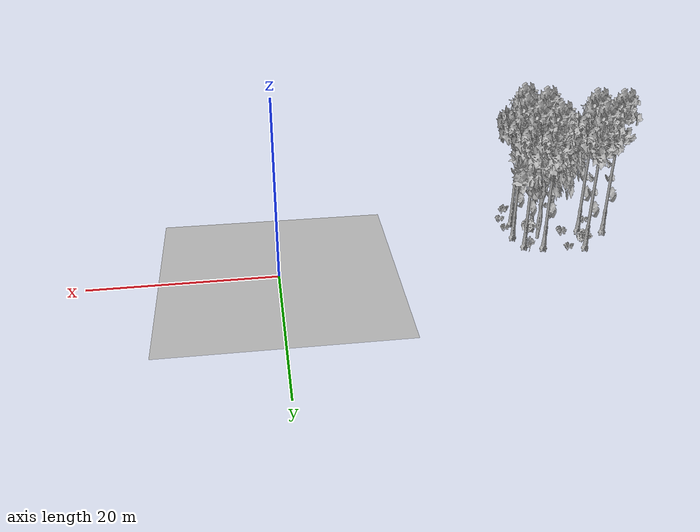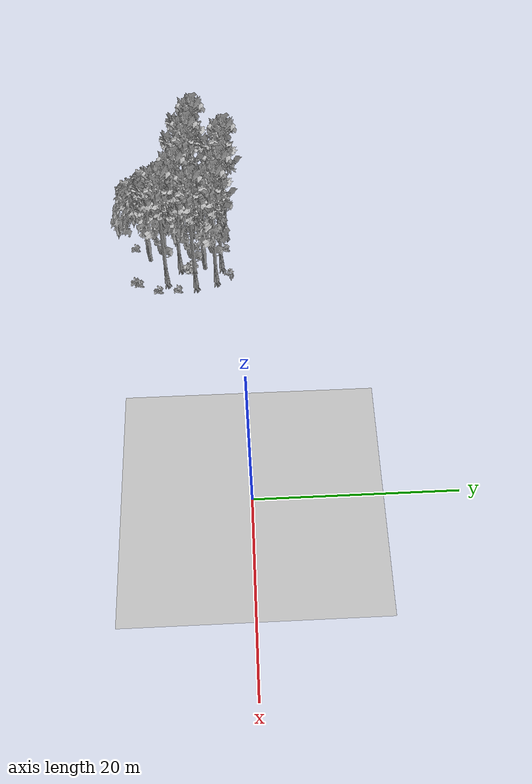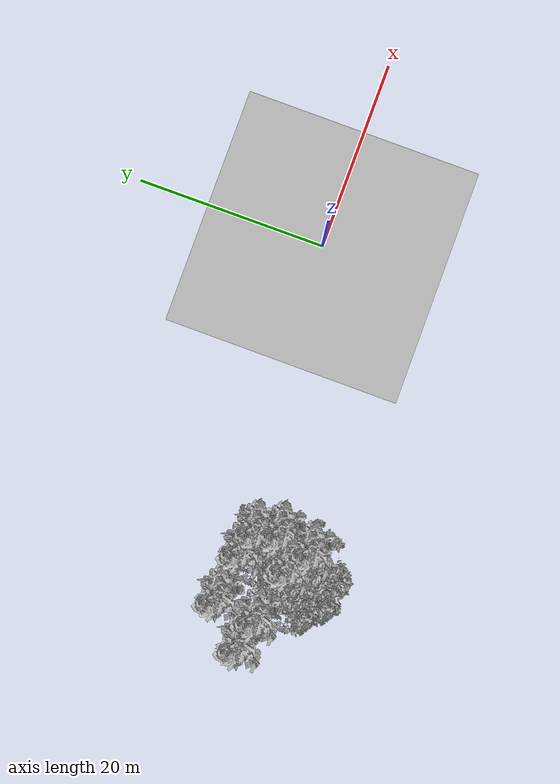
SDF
<sdf version="1.7">
 <world name="default">
  <model name="ground_plane">
   <static>1</static>
   <link name="link">
    <collision name="collision">
     <pose>-50 0 0 0 -0 0</pose>
     <geometry><plane><normal>0 0 1</normal><size>80 80</size></plane></geometry>
     <surface><contact><ode><min_depth>0.01</min_depth><max_vel>0</max_vel></ode></contact></surface>
    </collision>
    <visual name="grass">
     <cast_shadows>0</cast_shadows>
     <geometry>
      <mesh>
       <scale>0.46714285714285714 0.46714285714285714 0.1</scale>
       <uri>file://grass_plane/meshes/grass_plane.dae</uri>
      </mesh>
     </geometry>
    </visual>
   </link>
  </model>
  <model name="Tree 35">
   <static>1</static>
   <pose>-35.33837884634204 -5.912061178661986 0 1.57079 -0 0</pose>
   <link name="link">
    <collision name="collision">
     <geometry><mesh><scale>3.5 5 3.5</scale><uri>model://tree_9/meshes/tree_9.obj</uri></mesh></geometry>
    </collision>
    <visual name="visual">
     <geometry><mesh><scale>3.5 5 3.5</scale><uri>model://tree_9/meshes/tree_9.obj</uri></mesh></geometry>
    </visual>
   </link>
  </model>
  <model name="Tree 46">
   <static>1</static>
   <pose>-30.086069855366304 -7.158116199145198 0 1.57079 -0 0</pose>
   <link name="link">
    <collision name="collision">
     <geometry><mesh><scale>3.5 5 3.5</scale><uri>model://tree_9/meshes/tree_9.obj</uri></mesh></geometry>
    </collision>
    <visual name="visual">
     <geometry><mesh><scale>3.5 5 3.5</scale><uri>model://tree_9/meshes/tree_9.obj</uri></mesh></geometry>
    </visual>
   </link>
  </model>
  <model name="Tree 48">
   <static>1</static>
   <pose>-30.00092563726883 -4.4577484962211855 0 1.57079 -0 0</pose>
   <link name="link">
    <collision name="collision">
     <geometry><mesh><scale>3.5 5 3.5</scale><uri>model://tree_2/meshes/tree_2.obj</uri></mesh></geometry>
    </collision>
    <visual name="visual">
     <geometry><mesh><scale>3.5 5 3.5</scale><uri>model://tree_2/meshes/tree_2.obj</uri></mesh></geometry>
    </visual>
   </link>
  </model>
  <model name="Tree 51">
   <static>1</static>
   <pose>-28.048666339424443 -8.59627978916042 0 1.57079 -0 0</pose>
   <link name="link">
    <collision name="collision">
     <geometry><mesh><scale>3.5 5 3.5</scale><uri>model://tree_9/meshes/tree_9.obj</uri></mesh></geometry>
    </collision>
    <visual name="visual">
     <geometry><mesh><scale>3.5 5 3.5</scale><uri>model://tree_9/meshes/tree_9.obj</uri></mesh></geometry>
    </visual>
   </link>
  </model>
  <model name="Tree 189">
   <static>1</static>
   <pose>-34.75011380615322 -2.0312784968387234 0 1.57079 -0 0</pose>
   <link name="link">
    <collision name="collision">
     <geometry><mesh><scale>3.5 5 3.5</scale><uri>model://tree_9/meshes/tree_9.obj</uri></mesh></geometry>
    </collision>
    <visual name="visual">
     <geometry><mesh><scale>3.5 5 3.5</scale><uri>model://tree_9/meshes/tree_9.obj</uri></mesh></geometry>
    </visual>
   </link>
  </model>
  <model name="Tree 285">
   <static>1</static>
   <pose>-33.08496424516849 -8.998381900486265 0 1.57079 -0 0</pose>
   <link name="link">
    <collision name="collision">
     <geometry><mesh><scale>3.5 5 3.5</scale><uri>model://tree_2/meshes/tree_2.obj</uri></mesh></geometry>
    </collision>
    <visual name="visual">
     <geometry><mesh><scale>3.5 5 3.5</scale><uri>model://tree_2/meshes/tree_2.obj</uri></mesh></geometry>
    </visual>
   </link>
  </model>
  <model name="Tree 320">
   <static>1</static>
   <pose>-31.508734412796667 -10.560872783281098 0 1.57079 -0 0</pose>
   <link name="link">
    <collision name="collision">
     <geometry><mesh><scale>3.5 5 3.5</scale><uri>model://tree_2/meshes/tree_2.obj</uri></mesh></geometry>
    </collision>
    <visual name="visual">
     <geometry><mesh><scale>3.5 5 3.5</scale><uri>model://tree_2/meshes/tree_2.obj</uri></mesh></geometry>
    </visual>
   </link>
  </model>
  <model name="Tree 324">
   <static>1</static>
   <pose>-38.12848264152099 -5.318020073175049 0 1.57079 -0 0</pose>
   <link name="link">
    <collision name="collision">
     <geometry><mesh><scale>3.5 5 3.5</scale><uri>model://tree_9/meshes/tree_9.obj</uri></mesh></geometry>
    </collision>
    <visual name="visual">
     <geometry><mesh><scale>3.5 5 3.5</scale><uri>model://tree_9/meshes/tree_9.obj</uri></mesh></geometry>
    </visual>
   </link>
  </model>
  <model name="Tree 410">
   <static>1</static>
   <pose>-27.99550785788295 -3.179456516828914 0 1.57079 -0 0</pose>
   <link name="link">
    <collision name="collision">
     <geometry><mesh><scale>3.5 5 3.5</scale><uri>model://tree_9/meshes/tree_9.obj</uri></mesh></geometry>
    </collision>
    <visual name="visual">
     <geometry><mesh><scale>3.5 5 3.5</scale><uri>model://tree_9/meshes/tree_9.obj</uri></mesh></geometry>
    </visual>
   </link>
  </model>
  <model name="Tree 447">
   <static>1</static>
   <pose>-30.050223008664872 -2.579901140443525 0 1.57079 -0 0</pose>
   <link name="link">
    <collision name="collision">
     <geometry><mesh><scale>3.5 5 3.5</scale><uri>model://tree_9/meshes/tree_9.obj</uri></mesh></geometry>
    </collision>
    <visual name="visual">
     <geometry><mesh><scale>3.5 5 3.5</scale><uri>model://tree_9/meshes/tree_9.obj</uri></mesh></geometry>
    </visual>
   </link>
  </model>
  <model name="Tree 620">
   <static>1</static>
   <pose>-27.31815409028615 -5.427241217309245 0 1.57079 -0 0</pose>
   <link name="link">
    <collision name="collision">
     <geometry><mesh><scale>3.5 5 3.5</scale><uri>model://tree_9/meshes/tree_9.obj</uri></mesh></geometry>
    </collision>
    <visual name="visual">
     <geometry><mesh><scale>3.5 5 3.5</scale><uri>model://tree_9/meshes/tree_9.obj</uri></mesh></geometry>
    </visual>
   </link>
  </model>
  <model name="Bush 112">
   <static>1</static>
   <pose>-28.033375661422227 -1.5652834284443315 0 1.57079 -0 0</pose>
   <link name="link">
    <collision name="collision">
     <geometry><mesh><scale>2 2 2</scale><uri>model://bush_5/meshes/bush_5.obj</uri></mesh></geometry>
     <surface><contact><collide_without_contact>false</collide_without_contact></contact></surface>
    </collision>
    <visual name="visual">
     <geometry><mesh><scale>2 2 2</scale><uri>model://bush_5/meshes/bush_5.obj</uri></mesh></geometry>
    </visual>
   </link>
  </model>
  <model name="Bush 125">
   <static>1</static>
   <pose>-33.28605736669472 -12.263268305538865 0 1.57079 -0 0</pose>
   <link name="link">
    <collision name="collision">
     <geometry><mesh><scale>2 2 2</scale><uri>model://bush_2/meshes/bush_2.obj</uri></mesh></geometry>
     <surface><contact><collide_without_contact>false</collide_without_contact></contact></surface>
    </collision>
    <visual name="visual">
     <geometry><mesh><scale>2 2 2</scale><uri>model://bush_2/meshes/bush_2.obj</uri></mesh></geometry>
    </visual>
   </link>
  </model>
  <model name="Bush 133">
   <static>1</static>
   <pose>-33.22302852038408 -5.484979814258438 0 1.57079 -0 0</pose>
   <link name="link">
    <collision name="collision">
     <geometry><mesh><scale>2 2 2</scale><uri>model://bush_2/meshes/bush_2.obj</uri></mesh></geometry>
     <surface><contact><collide_without_contact>false</collide_without_contact></contact></surface>
    </collision>
    <visual name="visual">
     <geometry><mesh><scale>2 2 2</scale><uri>model://bush_2/meshes/bush_2.obj</uri></mesh></geometry>
    </visual>
   </link>
  </model>
  <model name="Bush 250">
   <static>1</static>
   <pose>-36.87418965487643 -8.085841971461754 0 1.57079 -0 0</pose>
   <link name="link">
    <collision name="collision">
     <geometry><mesh><scale>2 2 2</scale><uri>model://bush_2/meshes/bush_2.obj</uri></mesh></geometry>
     <surface><contact><collide_without_contact>false</collide_without_contact></contact></surface>
    </collision>
    <visual name="visual">
     <geometry><mesh><scale>2 2 2</scale><uri>model://bush_2/meshes/bush_2.obj</uri></mesh></geometry>
    </visual>
   </link>
  </model>
  <model name="Bush 401">
   <static>1</static>
   <pose>-32.83456724378272 -2.1655725930775276 0 1.57079 -0 0</pose>
   <link name="link">
    <collision name="collision">
     <geometry><mesh><scale>2 2 2</scale><uri>model://bush_2/meshes/bush_2.obj</uri></mesh></geometry>
     <surface><contact><collide_without_contact>false</collide_without_contact></contact></surface>
    </collision>
    <visual name="visual">
     <geometry><mesh><scale>2 2 2</scale><uri>model://bush_2/meshes/bush_2.obj</uri></mesh></geometry>
    </visual>
   </link>
  </model>
  <model name="Bush 407">
   <static>1</static>
   <pose>-33.27991149258682 -6.020082756402594 0 1.57079 -0 0</pose>
   <link name="link">
    <collision name="collision">
     <geometry><mesh><scale>2 2 2</scale><uri>model://bush_2/meshes/bush_2.obj</uri></mesh></geometry>
     <surface><contact><collide_without_contact>false</collide_without_contact></contact></surface>
    </collision>
    <visual name="visual">
     <geometry><mesh><scale>2 2 2</scale><uri>model://bush_2/meshes/bush_2.obj</uri></mesh></geometry>
    </visual>
   </link>
  </model>
  <model name="Bush 447">
   <static>1</static>
   <pose>-34.68285663217976 -2.85957157510002 0 1.57079 -0 0</pose>
   <link name="link">
    <collision name="collision">
     <geometry><mesh><scale>2 2 2</scale><uri>model://bush_1/meshes/bush_1.obj</uri></mesh></geometry>
     <surface><contact><collide_without_contact>false</collide_without_contact></contact></surface>
    </collision>
    <visual name="visual">
     <geometry><mesh><scale>2 2 2</scale><uri>model://bush_1/meshes/bush_1.obj</uri></mesh></geometry>
    </visual>
   </link>
  </model>
  <model name="Bush 457">
   <static>1</static>
   <pose>-26.94975297007735 -9.56675974189939 0 1.57079 -0 0</pose>
   <link name="link">
    <collision name="collision">
     <geometry><mesh><scale>2 2 2</scale><uri>model://bush_2/meshes/bush_2.obj</uri></mesh></geometry>
     <surface><contact><collide_without_contact>false</collide_without_contact></contact></surface>
    </collision>
    <visual name="visual">
     <geometry><mesh><scale>2 2 2</scale><uri>model://bush_2/meshes/bush_2.obj</uri></mesh></geometry>
    </visual>
   </link>
  </model>
  <model name="Bush 468">
   <static>1</static>
   <pose>-28.27903603320427 -12.164493591242174 0 1.57079 -0 0</pose>
   <link name="link">
    <collision name="collision">
     <geometry><mesh><scale>2 2 2</scale><uri>model://bush_2/meshes/bush_2.obj</uri></mesh></geometry>
     <surface><contact><collide_without_contact>false</collide_without_contact></contact></surface>
    </collision>
    <visual name="visual">
     <geometry><mesh><scale>2 2 2</scale><uri>model://bush_2/meshes/bush_2.obj</uri></mesh></geometry>
    </visual>
   </link>
  </model>
  <model name="Bush 549">
   <static>1</static>
   <pose>-26.955939948666895 -7.417282886942999 0 1.57079 -0 0</pose>
   <link name="link">
    <collision name="collision">
     <geometry><mesh><scale>2 2 2</scale><uri>model://bush_2/meshes/bush_2.obj</uri></mesh></geometry>
     <surface><contact><collide_without_contact>false</collide_without_contact></contact></surface>
    </collision>
    <visual name="visual">
     <geometry><mesh><scale>2 2 2</scale><uri>model://bush_2/meshes/bush_2.obj</uri></mesh></geometry>
    </visual>
   </link>
  </model>
  <model name="Bush 561">
   <static>1</static>
   <pose>-27.975473601023662 -11.711353738432493 0 1.57079 -0 0</pose>
   <link name="link">
    <collision name="collision">
     <geometry><mesh><scale>2 2 2</scale><uri>model://bush_2/meshes/bush_2.obj</uri></mesh></geometry>
     <surface><contact><collide_without_contact>false</collide_without_contact></contact></surface>
    </collision>
    <visual name="visual">
     <geometry><mesh><scale>2 2 2</scale><uri>model://bush_2/meshes/bush_2.obj</uri></mesh></geometry>
    </visual>
   </link>
  </model>
  <model name="Bush 593">
   <static>1</static>
   <pose>-29.235852926099973 -6.074357569591044 0 1.57079 -0 0</pose>
   <link name="link">
    <collision name="collision">
     <geometry><mesh><scale>2 2 2</scale><uri>model://bush_1/meshes/bush_1.obj</uri></mesh></geometry>
     <surface><contact><collide_without_contact>false</collide_without_contact></contact></surface>
    </collision>
    <visual name="visual">
     <geometry><mesh><scale>2 2 2</scale><uri>model://bush_1/meshes/bush_1.obj</uri></mesh></geometry>
    </visual>
   </link>
  </model>
 </world>
</sdf>
